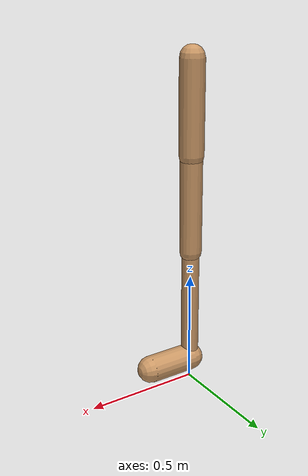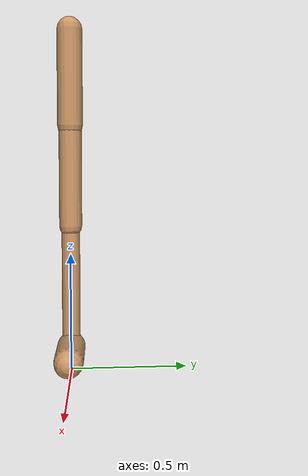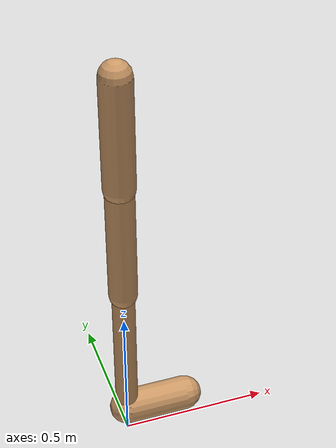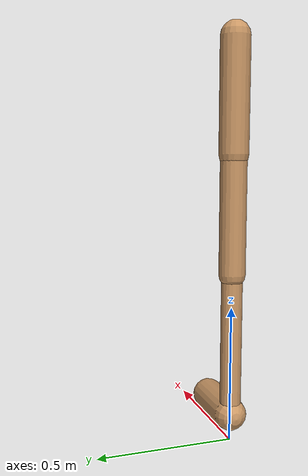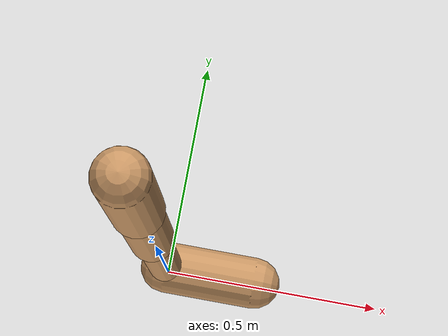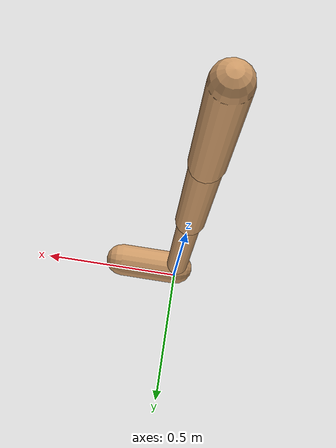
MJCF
<mujoco model="walker2d">
  <compiler angle="degree" coordinate="global" inertiafromgeom="true" />
  <default>
    <joint armature="0.01" damping=".1" limited="true" />
    <geom conaffinity="0" condim="3" contype="1" density="1000" friction="0.8 .1 .1" rgba="0.8 0.6 .4 1" />
  </default>
  <option integrator="RK4" timestep="0.002" />
  <worldbody>

    <body name="torso" pos="0 0 -0.047081330919517314">
      <joint armature="0" axis="1 0 0" damping="0" limited="false" name="ignorex" pos="0 0 0" stiffness="0" type="slide" />
      <joint armature="0" axis="0 0 1" damping="0" limited="false" name="ignorez" pos="0 0 0" ref="1.25" stiffness="0" type="slide" />
      <joint armature="0" axis="0 1 0" damping="0" limited="false" name="ignorey" pos="0 0 0" stiffness="0" type="hinge" />
      <geom fromto="0 0 1.45 0 0 1.05" name="torso_geom" size="0.053206982560302755" type="capsule" />
      <body name="thigh">
        <joint axis="0 -1 0" name="thigh_joint" pos="0 0 1.05" range="-150 0" type="hinge" />
        <geom fromto="0.0 0.0 1.05 0.0 0.0 0.6223016830671397" name="thigh_geom" size="0.047968178781044604" type="capsule" />
        <body name="leg" pos="0.0 0.0 0.022301683067139755">
          <joint axis="0 -1 0" name="leg_joint" pos="0 0 0.6" range="-150 0" type="hinge" />
          <geom fromto="0.0 0.0 0.6 0.0 0.0 0.12477964785237754" name="leg_geom" size="0.03837454302483568" type="capsule" />
          <body name="foot" pos="0.0 0.0 0.02477964785237753">
            <joint axis="0 -1 0" name="foot_joint" pos="0 0 0.1" range="-45 45" type="hinge" />
            <geom fromto="-0.0 0.0 0.1 0.20890898436343883 0.0 0.1" name="foot_geom" size="0.05957052720120263" type="capsule" />
          </body>
        </body>
      </body>

      <body name="thigh_left">
        <joint axis="0 -1 0" name="thigh_left_joint" pos="0 0 1.05" range="-150 0" type="hinge" />
        <geom fromto="0.0 0.0 1.05 0.0 0.0 0.6223016830671397" name="thigh_left_geom" rgba=".7 .3 .6 1" size="0.047968178781044604" type="capsule" />
        <body name="leg_left" pos="0.0 0.0 0.022301683067139755">
          <joint axis="0 -1 0" name="leg_left_joint" pos="0 0 0.6" range="-150 0" type="hinge" />
          <geom fromto="0.0 0.0 0.6 0.0 0.0 0.12477964785237754" name="leg_left_geom" rgba=".7 .3 .6 1" size="0.03837454302483568" type="capsule" />
          <body name="foot_left" pos="0.0 0.0 0.02477964785237753">
            <joint axis="0 -1 0" name="foot_left_joint" pos="0 0 0.1" range="-45 45" type="hinge" />
            <geom fromto="-0.0 0.0 0.1 0.20890898436343883 0.0 0.1" name="foot_left_geom" rgba=".7 .3 .6 1" size="0.05957052720120263" type="capsule" />
          </body>
        </body>
      </body>
    </body>
  </worldbody>
  <actuator>

    <motor ctrllimited="true" ctrlrange="-1.0 1.0" gear="100" joint="thigh_joint" />
    <motor ctrllimited="true" ctrlrange="-1.0 1.0" gear="100" joint="leg_joint" />
    <motor ctrllimited="true" ctrlrange="-1.0 1.0" gear="100" joint="foot_joint" />
    <motor ctrllimited="true" ctrlrange="-1.0 1.0" gear="100" joint="thigh_left_joint" />
    <motor ctrllimited="true" ctrlrange="-1.0 1.0" gear="100" joint="leg_left_joint" />
    <motor ctrllimited="true" ctrlrange="-1.0 1.0" gear="100" joint="foot_left_joint" />

  </actuator>
</mujoco>
